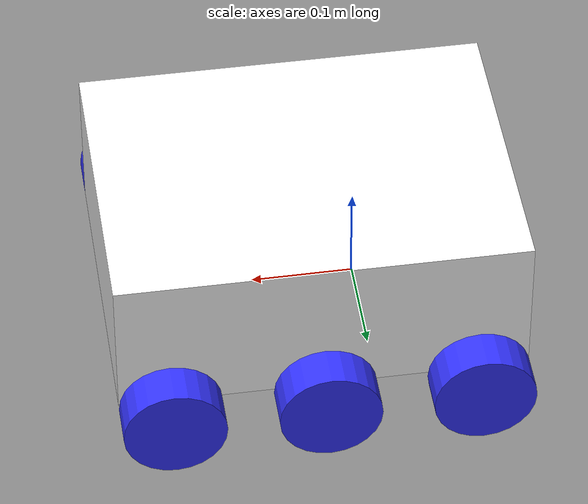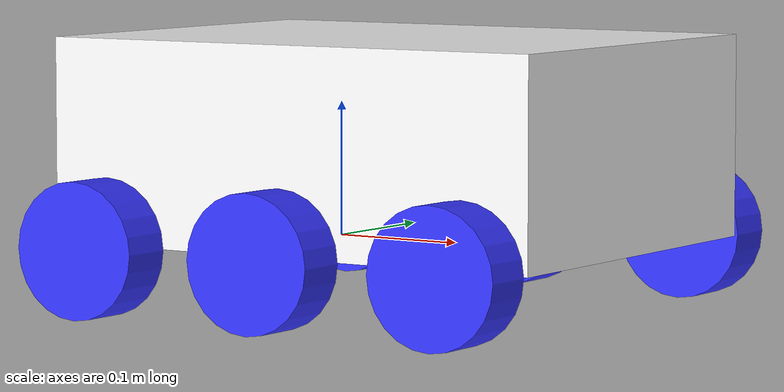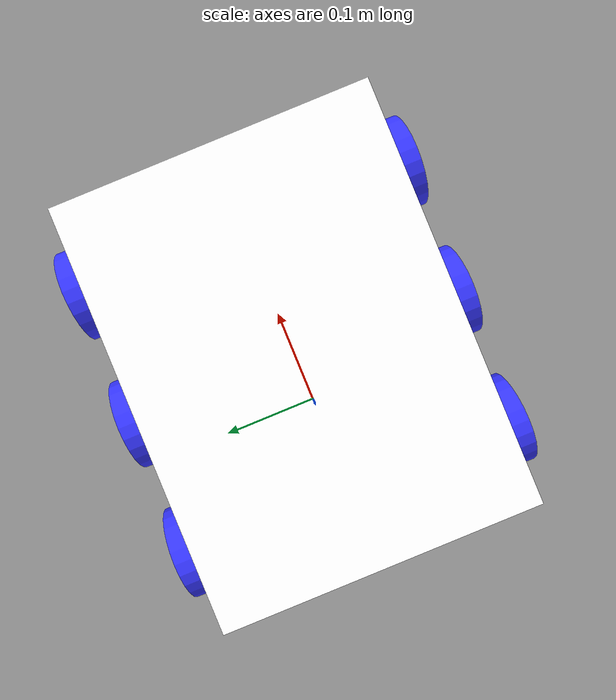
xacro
<?xml version="1.0"?>
<robot xmlns:xacro="http://www.ros.org/wiki/xacro"  name="robot">

    <xacro:include filename="inertial_macros.xacro"/>

    <material name="white">
        <color rgba="1 1 1 1"/>
    </material>

    <material name="orange">
        <color rgba="1 0.3 0.1 1"/>
    </material>

    <material name="blue">
        <color rgba="0.2 0.2 1 1"/>
    </material>

    <material name="black">
        <color rgba="0 0 0 1"/>
    </material>

    <material name="red">
        <color rgba="1 0 0 1"/>
    </material>

    <!-- BASE LINK -->
    <link name="base_link">

    </link>

    <!-- BASE_FOOTPRINT LINK -->

    <joint name="base_footprint_joint" type="fixed">
        <parent link="base_link"/>
        <child link="base_footprint"/>
        <origin xyz="0 0 0" rpy="0 0 0"/>
    </joint>

    <link name="base_footprint">

    </link>

    <!-- CHASSIS LINK -->
    <joint name="chassis_joint" type="fixed">
        <parent link="base_link"/>
        <child link="chassis"/>
        <origin xyz="-0.1 0 0"/>
    </joint>

    <link name="chassis">
        <visual>
            <origin xyz="0.15 0 0.075" rpy="0 0 0"/>
            <geometry>
                <box size="0.4 0.3 0.15"/>
            </geometry>
            <material name="white"/>
        </visual>

        <collision>
            <origin xyz="0.15 0 0.075" rpy="0 0 0"/>
            <geometry>
                <box size="0.4 0.3 0.15"/>
            </geometry>
        </collision>

        <xacro:inertial_box mass="0.5" x="0.4" y="0.3" z="0.15">
            <origin xyz="0.15 0 0.075" rpy="0 0 0"/>
        </xacro:inertial_box>
    </link>

    <gazebo reference="chassis">
        <material>
            Gazebo/White
        </material>
    </gazebo>

    <!-- LEFT WHEEL LINK -->
    <joint name="left_wheel_joint_front" type="continuous">
        <parent link="base_link"/>
        <child link="left_wheel_front"/>
        <origin xyz="0.2 0.175 0" rpy="-${pi/2} 0 0"/>
        <axis xyz="0 0 1"/>
    </joint>

    <joint name="left_wheel_joint_center" type="continuous">
        <parent link="base_link"/>
        <child link="left_wheel_center"/>
        <origin xyz="0.05 0.175 0" rpy="-${pi/2} 0 0"/>
        <axis xyz="0 0 1"/>
    </joint>

    <joint name="left_wheel_joint_back" type="continuous">
        <parent link="base_link"/>
        <child link="left_wheel_back"/>
        <origin xyz="-0.1 0.175 0" rpy="-${pi/2} 0 0"/>
        <axis xyz="0 0 1"/>
    </joint>

    <link name="left_wheel_front">
        <visual>
            <geometry>
                <cylinder length="0.04" radius="0.05" />
            </geometry>
            <material name="blue"/>
        </visual>

        <collision>
            <geometry>
                <sphere radius="0.05" />
            </geometry>
        </collision>

        <xacro:inertial_cylinder mass="0.1" length="0.04" radius="0.05">
            <origin xyz="0 0 0" rpy="0 0 0"/>
        </xacro:inertial_cylinder>
    </link>

    <link name="left_wheel_center">
        <visual>
            <geometry>
                <cylinder length="0.04" radius="0.05" />
            </geometry>
            <material name="blue"/>
        </visual>

        <collision>
            <geometry>
                <sphere radius="0.05" />
            </geometry>
        </collision>

        <xacro:inertial_cylinder mass="0.1" length="0.04" radius="0.05">
            <origin xyz="0 0 0" rpy="0 0 0"/>
        </xacro:inertial_cylinder>
    </link>

    <link name="left_wheel_back">
        <visual>
            <geometry>
                <cylinder length="0.04" radius="0.05"/>
            </geometry>
            <material name="blue"/>
        </visual>

        <collision>
            <geometry>
                <sphere radius="0.05" />
            </geometry>
        </collision>

        <xacro:inertial_cylinder mass="0.1" length="0.04" radius="0.05">
            <origin xyz="0 0 0" rpy="0 0 0"/>
        </xacro:inertial_cylinder>
    </link>

    <gazebo reference="left_wheel_front">
        <material>
            Gazebo/Blue
        </material>
    </gazebo>

    <gazebo reference="left_wheel_center">
        <material>
            Gazebo/Blue
        </material>
    </gazebo>

    <gazebo reference="left_wheel_back">
        <material>
            Gazebo/Blue
        </material>
    </gazebo>

    <!-- RIGHT WHEEL LINK -->
    <joint name="right_wheel_joint_front" type="continuous">
        <parent link="base_link"/>
        <child link="right_wheel_front"/>
        <origin xyz="0.2 -0.175 0" rpy="${pi/2} 0 0"/>
        <axis xyz="0 0 -1"/>
    </joint>

    <joint name="right_wheel_joint_center" type="continuous">
        <parent link="base_link"/>
        <child link="right_wheel_center"/>
        <origin xyz="0.05 -0.175 0" rpy="${pi/2} 0 0"/>
        <axis xyz="0 0 -1"/>
    </joint>

    <joint name="right_wheel_joint_back" type="continuous">
        <parent link="base_link"/>
        <child link="right_wheel_back"/>
        <origin xyz="-0.1 -0.175 0" rpy="${pi/2} 0 0"/>
        <axis xyz="0 0 -1"/>
    </joint>

    <link name="right_wheel_front">
        <visual>
            <geometry>
                <cylinder length="0.04" radius="0.05" />
            </geometry>
            <material name="blue"/>
        </visual>

        <collision>
            <geometry>
                <sphere radius="0.05" />
            </geometry>
        </collision>

        <xacro:inertial_cylinder mass="0.1" length="0.04" radius="0.05">
            <origin xyz="0 0 0" rpy="0 0 0"/>
        </xacro:inertial_cylinder>
    </link>

    <link name="right_wheel_center">
        <visual>
            <geometry>
                <cylinder length="0.04" radius="0.05" />
            </geometry>
            <material name="blue"/>
        </visual>

        <collision>
            <geometry>
                <sphere radius="0.05" />
            </geometry>
        </collision>

        <xacro:inertial_cylinder mass="0.1" length="0.04" radius="0.05">
            <origin xyz="0 0 0" rpy="0 0 0"/>
        </xacro:inertial_cylinder>
    </link>

    <link name="right_wheel_back">
        <visual>
            <geometry>
                <cylinder length="0.04" radius="0.05" />
            </geometry>
            <material name="blue"/>
        </visual>

        <collision>
            <geometry>
                <sphere radius="0.05" />
            </geometry>
        </collision>

        <xacro:inertial_cylinder mass="0.1" length="0.04" radius="0.05">
            <origin xyz="0 0 0" rpy="0 0 0"/>
        </xacro:inertial_cylinder>
    </link>

    <gazebo reference="right_wheel_front">
        <material>
            Gazebo/Blue
        </material>
    </gazebo>

    <gazebo reference="right_wheel_center">
        <material>
            Gazebo/Blue
        </material>
    </gazebo>

    <gazebo reference="right_wheel_back">
        <material>
            Gazebo/Blue
        </material>
    </gazebo>
</robot>
